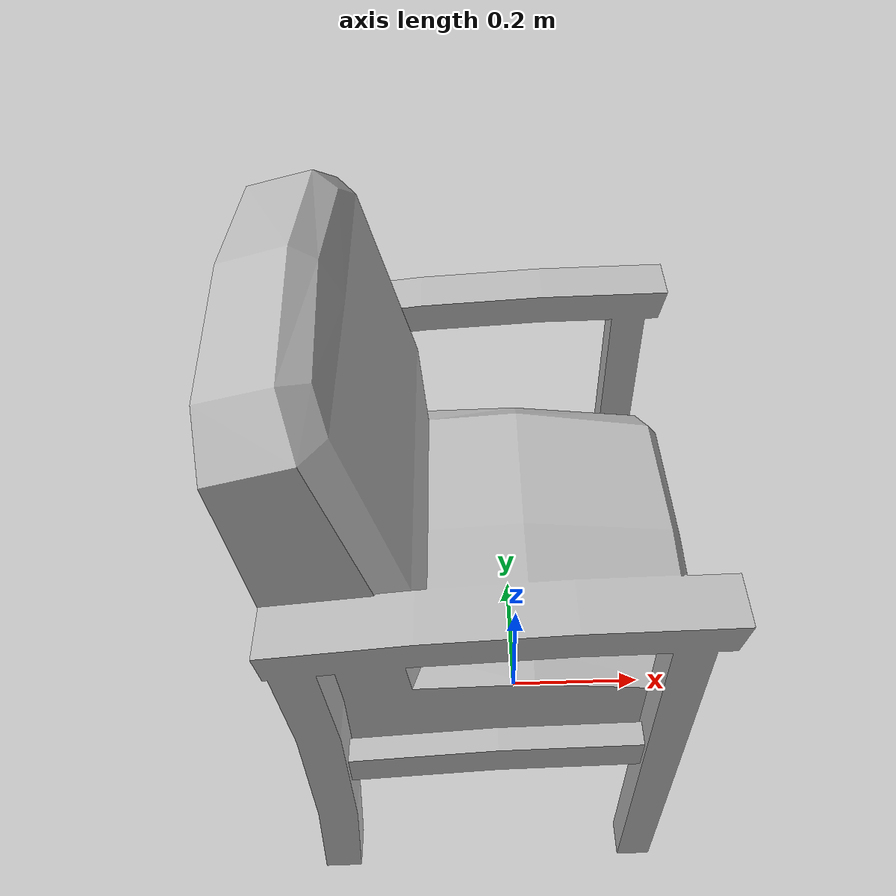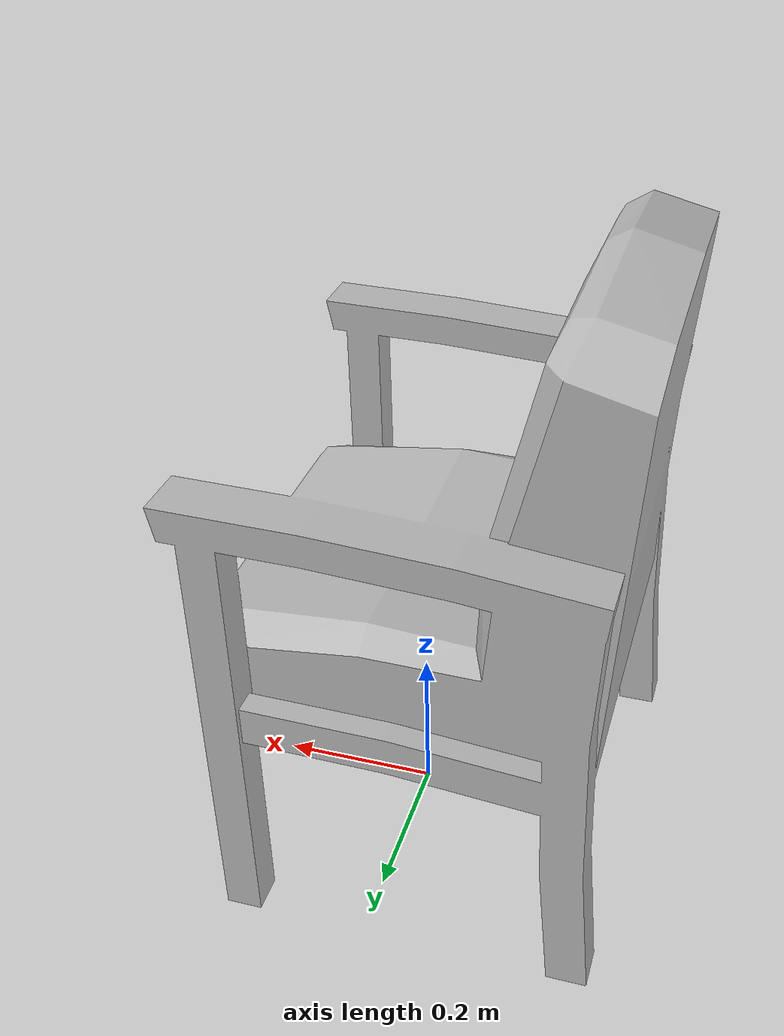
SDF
<?xml version="1.0"?>
<sdf version="1.6">
    <model name="Chair">
        <link name="body">
            <pose>0 0 0 0 0 1.5708</pose>
            <visual name="visual">
                <geometry>
                    <mesh>
                        <uri>meshes/Chair.obj</uri>
                        <scale>0.00817 0.00817 0.00817</scale>
                    </mesh>
                </geometry>
            </visual>
            <collision name="collision">
                <geometry>
                    <mesh>
                        <uri>meshes/Chair.obj</uri>
                        <scale>0.00817 0.00817 0.00817</scale>
                    </mesh>
                </geometry>
            </collision>
        </link>
    </model>
</sdf>
